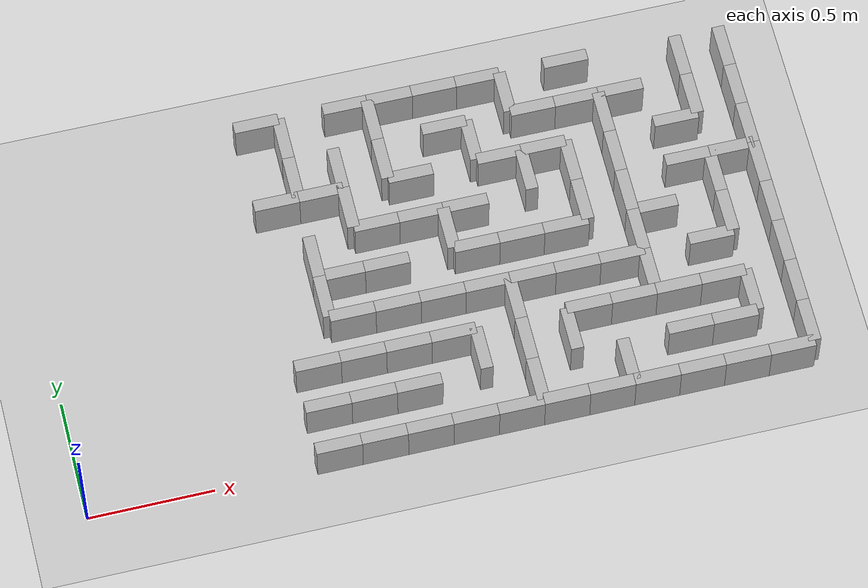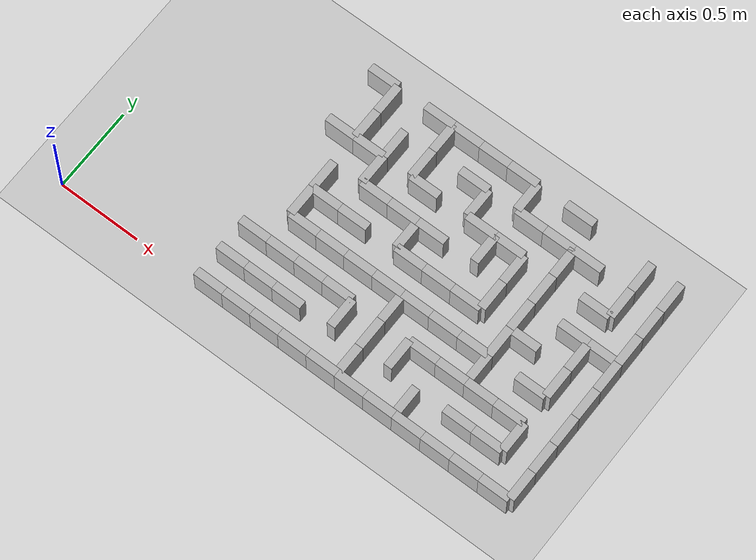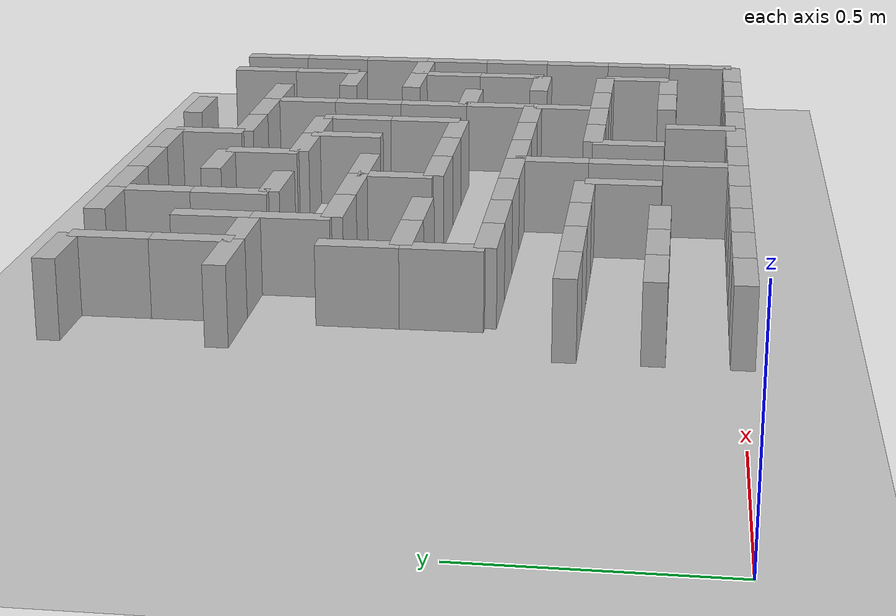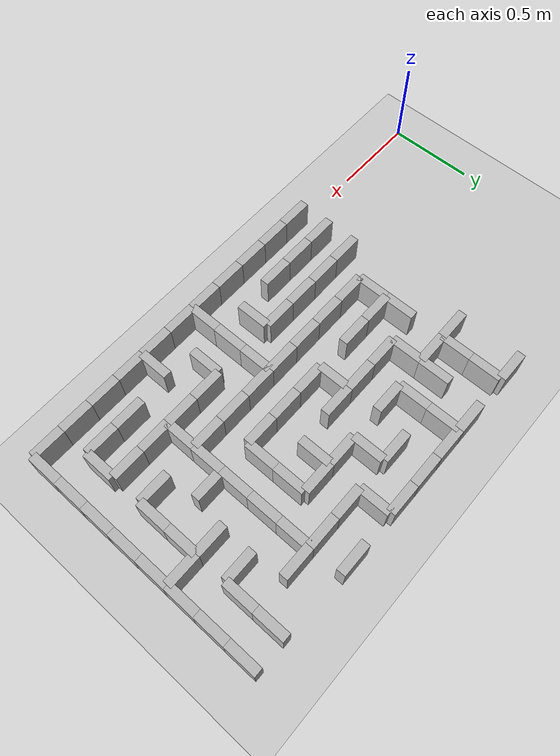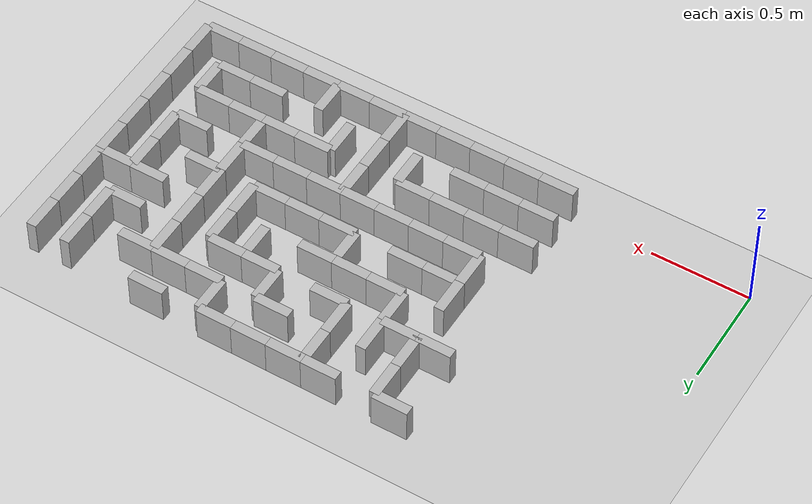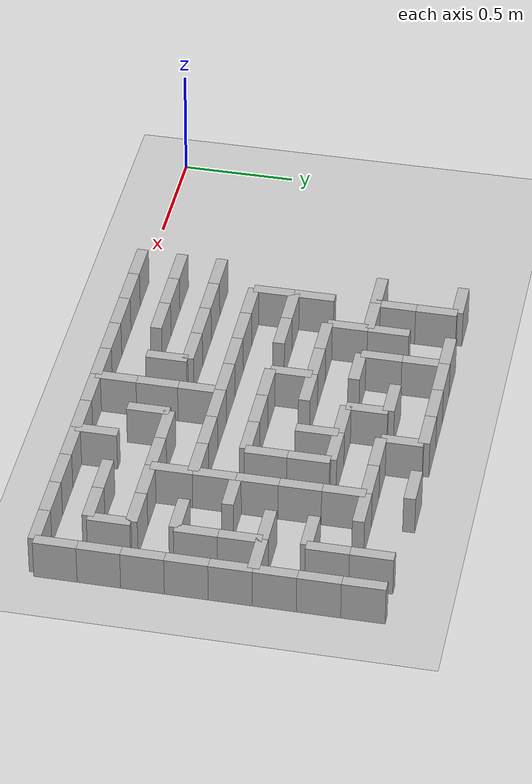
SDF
<sdf version="1.6">
 <world name="default">
  <model name="ground_plane">
   <static>1</static>
   <link name="link">
    <collision name="collision">
     <geometry><plane><normal>0 0 1</normal><size>100 100</size></plane></geometry>
     <surface><friction><ode><mu>100</mu><mu2>50</mu2></ode></friction></surface>
    </collision>
    <visual name="visual">
     <cast_shadows>0</cast_shadows>
     <geometry><plane><normal>0 0 1</normal><size>100 100</size></plane></geometry>
     <material>
      <script><uri>file://media/materials/scripts/gazebo.material</uri><name>Gazebo/Grey</name></script>
     </material>
    </visual>
   </link>
  </model>
  <model name="labyrinth_wall11">
   <pose>0.990000 0.000000 0.09 0 0 0.000000</pose>
   <link name="link">
    <inertial><mass>3.0</mass></inertial>
    <collision name="collision"><geometry><box><size>0.180 0.050 0.180</size></box></geometry></collision>
    <visual name="visual"><geometry><box><size>0.180 0.050 0.180</size></box></geometry></visual>
   </link>
   <static>true</static>
  </model>
  <model name="labyrinth_wall13">
   <pose>1.170000 0.000000 0.09 0 0 0.000000</pose>
   <link name="link">
    <inertial><mass>3.0</mass></inertial>
    <collision name="collision"><geometry><box><size>0.180 0.050 0.180</size></box></geometry></collision>
    <visual name="visual"><geometry><box><size>0.180 0.050 0.180</size></box></geometry></visual>
   </link>
   <static>true</static>
  </model>
  <model name="labyrinth_wall15">
   <pose>1.350000 0.000000 0.09 0 0 0.000000</pose>
   <link name="link">
    <inertial><mass>3.0</mass></inertial>
    <collision name="collision"><geometry><box><size>0.180 0.050 0.180</size></box></geometry></collision>
    <visual name="visual"><geometry><box><size>0.180 0.050 0.180</size></box></geometry></visual>
   </link>
   <static>true</static>
  </model>
  <model name="labyrinth_wall17">
   <pose>1.530000 0.000000 0.09 0 0 0.000000</pose>
   <link name="link">
    <inertial><mass>3.0</mass></inertial>
    <collision name="collision"><geometry><box><size>0.180 0.050 0.180</size></box></geometry></collision>
    <visual name="visual"><geometry><box><size>0.180 0.050 0.180</size></box></geometry></visual>
   </link>
   <static>true</static>
  </model>
  <model name="labyrinth_wall19">
   <pose>1.710000 0.000000 0.09 0 0 0.000000</pose>
   <link name="link">
    <inertial><mass>3.0</mass></inertial>
    <collision name="collision"><geometry><box><size>0.180 0.050 0.180</size></box></geometry></collision>
    <visual name="visual"><geometry><box><size>0.180 0.050 0.180</size></box></geometry></visual>
   </link>
   <static>true</static>
  </model>
  <model name="labyrinth_wall20">
   <pose>1.800000 0.090000 0.09 0 0 1.570796</pose>
   <link name="link">
    <inertial><mass>3.0</mass></inertial>
    <collision name="collision"><geometry><box><size>0.180 0.050 0.180</size></box></geometry></collision>
    <visual name="visual"><geometry><box><size>0.180 0.050 0.180</size></box></geometry></visual>
   </link>
   <static>true</static>
  </model>
  <model name="labyrinth_wall21">
   <pose>1.890000 0.000000 0.09 0 0 0.000000</pose>
   <link name="link">
    <inertial><mass>3.0</mass></inertial>
    <collision name="collision"><geometry><box><size>0.180 0.050 0.180</size></box></geometry></collision>
    <visual name="visual"><geometry><box><size>0.180 0.050 0.180</size></box></geometry></visual>
   </link>
   <static>true</static>
  </model>
  <model name="labyrinth_wall23">
   <pose>2.070000 0.000000 0.09 0 0 0.000000</pose>
   <link name="link">
    <inertial><mass>3.0</mass></inertial>
    <collision name="collision"><geometry><box><size>0.180 0.050 0.180</size></box></geometry></collision>
    <visual name="visual"><geometry><box><size>0.180 0.050 0.180</size></box></geometry></visual>
   </link>
   <static>true</static>
  </model>
  <model name="labyrinth_wall24">
   <pose>2.160000 0.090000 0.09 0 0 1.570796</pose>
   <link name="link">
    <inertial><mass>3.0</mass></inertial>
    <collision name="collision"><geometry><box><size>0.180 0.050 0.180</size></box></geometry></collision>
    <visual name="visual"><geometry><box><size>0.180 0.050 0.180</size></box></geometry></visual>
   </link>
   <static>true</static>
  </model>
  <model name="labyrinth_wall25">
   <pose>2.250000 0.000000 0.09 0 0 0.000000</pose>
   <link name="link">
    <inertial><mass>3.0</mass></inertial>
    <collision name="collision"><geometry><box><size>0.180 0.050 0.180</size></box></geometry></collision>
    <visual name="visual"><geometry><box><size>0.180 0.050 0.180</size></box></geometry></visual>
   </link>
   <static>true</static>
  </model>
  <model name="labyrinth_wall27">
   <pose>2.430000 0.000000 0.09 0 0 0.000000</pose>
   <link name="link">
    <inertial><mass>3.0</mass></inertial>
    <collision name="collision"><geometry><box><size>0.180 0.050 0.180</size></box></geometry></collision>
    <visual name="visual"><geometry><box><size>0.180 0.050 0.180</size></box></geometry></visual>
   </link>
   <static>true</static>
  </model>
  <model name="labyrinth_wall29">
   <pose>2.610000 0.000000 0.09 0 0 0.000000</pose>
   <link name="link">
    <inertial><mass>3.0</mass></inertial>
    <collision name="collision"><geometry><box><size>0.180 0.050 0.180</size></box></geometry></collision>
    <visual name="visual"><geometry><box><size>0.180 0.050 0.180</size></box></geometry></visual>
   </link>
   <static>true</static>
  </model>
  <model name="labyrinth_wall31">
   <pose>2.790000 0.000000 0.09 0 0 0.000000</pose>
   <link name="link">
    <inertial><mass>3.0</mass></inertial>
    <collision name="collision"><geometry><box><size>0.180 0.050 0.180</size></box></geometry></collision>
    <visual name="visual"><geometry><box><size>0.180 0.050 0.180</size></box></geometry></visual>
   </link>
   <static>true</static>
  </model>
  <model name="labyrinth_wall32">
   <pose>2.880000 0.090000 0.09 0 0 1.570796</pose>
   <link name="link">
    <inertial><mass>3.0</mass></inertial>
    <collision name="collision"><geometry><box><size>0.180 0.050 0.180</size></box></geometry></collision>
    <visual name="visual"><geometry><box><size>0.180 0.050 0.180</size></box></geometry></visual>
   </link>
   <static>true</static>
  </model>
  <model name="labyrinth_wall44">
   <pose>0.990000 0.180000 0.09 0 0 0.000000</pose>
   <link name="link">
    <inertial><mass>3.0</mass></inertial>
    <collision name="collision"><geometry><box><size>0.180 0.050 0.180</size></box></geometry></collision>
    <visual name="visual"><geometry><box><size>0.180 0.050 0.180</size></box></geometry></visual>
   </link>
   <static>true</static>
  </model>
  <model name="labyrinth_wall46">
   <pose>1.170000 0.180000 0.09 0 0 0.000000</pose>
   <link name="link">
    <inertial><mass>3.0</mass></inertial>
    <collision name="collision"><geometry><box><size>0.180 0.050 0.180</size></box></geometry></collision>
    <visual name="visual"><geometry><box><size>0.180 0.050 0.180</size></box></geometry></visual>
   </link>
   <static>true</static>
  </model>
  <model name="labyrinth_wall48">
   <pose>1.350000 0.180000 0.09 0 0 0.000000</pose>
   <link name="link">
    <inertial><mass>3.0</mass></inertial>
    <collision name="collision"><geometry><box><size>0.180 0.050 0.180</size></box></geometry></collision>
    <visual name="visual"><geometry><box><size>0.180 0.050 0.180</size></box></geometry></visual>
   </link>
   <static>true</static>
  </model>
  <model name="labyrinth_wall51">
   <pose>1.620000 0.270000 0.09 0 0 1.570796</pose>
   <link name="link">
    <inertial><mass>3.0</mass></inertial>
    <collision name="collision"><geometry><box><size>0.180 0.050 0.180</size></box></geometry></collision>
    <visual name="visual"><geometry><box><size>0.180 0.050 0.180</size></box></geometry></visual>
   </link>
   <static>true</static>
  </model>
  <model name="labyrinth_wall53">
   <pose>1.800000 0.270000 0.09 0 0 1.570796</pose>
   <link name="link">
    <inertial><mass>3.0</mass></inertial>
    <collision name="collision"><geometry><box><size>0.180 0.050 0.180</size></box></geometry></collision>
    <visual name="visual"><geometry><box><size>0.180 0.050 0.180</size></box></geometry></visual>
   </link>
   <static>true</static>
  </model>
  <model name="labyrinth_wall55">
   <pose>1.980000 0.270000 0.09 0 0 1.570796</pose>
   <link name="link">
    <inertial><mass>3.0</mass></inertial>
    <collision name="collision"><geometry><box><size>0.180 0.050 0.180</size></box></geometry></collision>
    <visual name="visual"><geometry><box><size>0.180 0.050 0.180</size></box></geometry></visual>
   </link>
   <static>true</static>
  </model>
  <model name="labyrinth_wall60">
   <pose>2.430000 0.180000 0.09 0 0 0.000000</pose>
   <link name="link">
    <inertial><mass>3.0</mass></inertial>
    <collision name="collision"><geometry><box><size>0.180 0.050 0.180</size></box></geometry></collision>
    <visual name="visual"><geometry><box><size>0.180 0.050 0.180</size></box></geometry></visual>
   </link>
   <static>true</static>
  </model>
  <model name="labyrinth_wall62">
   <pose>2.610000 0.180000 0.09 0 0 0.000000</pose>
   <link name="link">
    <inertial><mass>3.0</mass></inertial>
    <collision name="collision"><geometry><box><size>0.180 0.050 0.180</size></box></geometry></collision>
    <visual name="visual"><geometry><box><size>0.180 0.050 0.180</size></box></geometry></visual>
   </link>
   <static>true</static>
  </model>
  <model name="labyrinth_wall63">
   <pose>2.700000 0.270000 0.09 0 0 1.570796</pose>
   <link name="link">
    <inertial><mass>3.0</mass></inertial>
    <collision name="collision"><geometry><box><size>0.180 0.050 0.180</size></box></geometry></collision>
    <visual name="visual"><geometry><box><size>0.180 0.050 0.180</size></box></geometry></visual>
   </link>
   <static>true</static>
  </model>
  <model name="labyrinth_wall65">
   <pose>2.880000 0.270000 0.09 0 0 1.570796</pose>
   <link name="link">
    <inertial><mass>3.0</mass></inertial>
    <collision name="collision"><geometry><box><size>0.180 0.050 0.180</size></box></geometry></collision>
    <visual name="visual"><geometry><box><size>0.180 0.050 0.180</size></box></geometry></visual>
   </link>
   <static>true</static>
  </model>
  <model name="labyrinth_wall77">
   <pose>0.990000 0.360000 0.09 0 0 0.000000</pose>
   <link name="link">
    <inertial><mass>3.0</mass></inertial>
    <collision name="collision"><geometry><box><size>0.180 0.050 0.180</size></box></geometry></collision>
    <visual name="visual"><geometry><box><size>0.180 0.050 0.180</size></box></geometry></visual>
   </link>
   <static>true</static>
  </model>
  <model name="labyrinth_wall79">
   <pose>1.170000 0.360000 0.09 0 0 0.000000</pose>
   <link name="link">
    <inertial><mass>3.0</mass></inertial>
    <collision name="collision"><geometry><box><size>0.180 0.050 0.180</size></box></geometry></collision>
    <visual name="visual"><geometry><box><size>0.180 0.050 0.180</size></box></geometry></visual>
   </link>
   <static>true</static>
  </model>
  <model name="labyrinth_wall81">
   <pose>1.350000 0.360000 0.09 0 0 0.000000</pose>
   <link name="link">
    <inertial><mass>3.0</mass></inertial>
    <collision name="collision"><geometry><box><size>0.180 0.050 0.180</size></box></geometry></collision>
    <visual name="visual"><geometry><box><size>0.180 0.050 0.180</size></box></geometry></visual>
   </link>
   <static>true</static>
  </model>
  <model name="labyrinth_wall83">
   <pose>1.530000 0.360000 0.09 0 0 0.000000</pose>
   <link name="link">
    <inertial><mass>3.0</mass></inertial>
    <collision name="collision"><geometry><box><size>0.180 0.050 0.180</size></box></geometry></collision>
    <visual name="visual"><geometry><box><size>0.180 0.050 0.180</size></box></geometry></visual>
   </link>
   <static>true</static>
  </model>
  <model name="labyrinth_wall86">
   <pose>1.800000 0.450000 0.09 0 0 1.570796</pose>
   <link name="link">
    <inertial><mass>3.0</mass></inertial>
    <collision name="collision"><geometry><box><size>0.180 0.050 0.180</size></box></geometry></collision>
    <visual name="visual"><geometry><box><size>0.180 0.050 0.180</size></box></geometry></visual>
   </link>
   <static>true</static>
  </model>
  <model name="labyrinth_wall89">
   <pose>2.070000 0.360000 0.09 0 0 0.000000</pose>
   <link name="link">
    <inertial><mass>3.0</mass></inertial>
    <collision name="collision"><geometry><box><size>0.180 0.050 0.180</size></box></geometry></collision>
    <visual name="visual"><geometry><box><size>0.180 0.050 0.180</size></box></geometry></visual>
   </link>
   <static>true</static>
  </model>
  <model name="labyrinth_wall91">
   <pose>2.250000 0.360000 0.09 0 0 0.000000</pose>
   <link name="link">
    <inertial><mass>3.0</mass></inertial>
    <collision name="collision"><geometry><box><size>0.180 0.050 0.180</size></box></geometry></collision>
    <visual name="visual"><geometry><box><size>0.180 0.050 0.180</size></box></geometry></visual>
   </link>
   <static>true</static>
  </model>
  <model name="labyrinth_wall92">
   <pose>2.340000 0.450000 0.09 0 0 1.570796</pose>
   <link name="link">
    <inertial><mass>3.0</mass></inertial>
    <collision name="collision"><geometry><box><size>0.180 0.050 0.180</size></box></geometry></collision>
    <visual name="visual"><geometry><box><size>0.180 0.050 0.180</size></box></geometry></visual>
   </link>
   <static>true</static>
  </model>
  <model name="labyrinth_wall93">
   <pose>2.430000 0.360000 0.09 0 0 0.000000</pose>
   <link name="link">
    <inertial><mass>3.0</mass></inertial>
    <collision name="collision"><geometry><box><size>0.180 0.050 0.180</size></box></geometry></collision>
    <visual name="visual"><geometry><box><size>0.180 0.050 0.180</size></box></geometry></visual>
   </link>
   <static>true</static>
  </model>
  <model name="labyrinth_wall95">
   <pose>2.610000 0.360000 0.09 0 0 0.000000</pose>
   <link name="link">
    <inertial><mass>3.0</mass></inertial>
    <collision name="collision"><geometry><box><size>0.180 0.050 0.180</size></box></geometry></collision>
    <visual name="visual"><geometry><box><size>0.180 0.050 0.180</size></box></geometry></visual>
   </link>
   <static>true</static>
  </model>
  <model name="labyrinth_wall98">
   <pose>2.880000 0.450000 0.09 0 0 1.570796</pose>
   <link name="link">
    <inertial><mass>3.0</mass></inertial>
    <collision name="collision"><geometry><box><size>0.180 0.050 0.180</size></box></geometry></collision>
    <visual name="visual"><geometry><box><size>0.180 0.050 0.180</size></box></geometry></visual>
   </link>
   <static>true</static>
  </model>
  <model name="labyrinth_wall111">
   <pose>1.080000 0.630000 0.09 0 0 1.570796</pose>
   <link name="link">
    <inertial><mass>3.0</mass></inertial>
    <collision name="collision"><geometry><box><size>0.180 0.050 0.180</size></box></geometry></collision>
    <visual name="visual"><geometry><box><size>0.180 0.050 0.180</size></box></geometry></visual>
   </link>
   <static>true</static>
  </model>
  <model name="labyrinth_wall112">
   <pose>1.170000 0.540000 0.09 0 0 0.000000</pose>
   <link name="link">
    <inertial><mass>3.0</mass></inertial>
    <collision name="collision"><geometry><box><size>0.180 0.050 0.180</size></box></geometry></collision>
    <visual name="visual"><geometry><box><size>0.180 0.050 0.180</size></box></geometry></visual>
   </link>
   <static>true</static>
  </model>
  <model name="labyrinth_wall114">
   <pose>1.350000 0.540000 0.09 0 0 0.000000</pose>
   <link name="link">
    <inertial><mass>3.0</mass></inertial>
    <collision name="collision"><geometry><box><size>0.180 0.050 0.180</size></box></geometry></collision>
    <visual name="visual"><geometry><box><size>0.180 0.050 0.180</size></box></geometry></visual>
   </link>
   <static>true</static>
  </model>
  <model name="labyrinth_wall116">
   <pose>1.530000 0.540000 0.09 0 0 0.000000</pose>
   <link name="link">
    <inertial><mass>3.0</mass></inertial>
    <collision name="collision"><geometry><box><size>0.180 0.050 0.180</size></box></geometry></collision>
    <visual name="visual"><geometry><box><size>0.180 0.050 0.180</size></box></geometry></visual>
   </link>
   <static>true</static>
  </model>
  <model name="labyrinth_wall118">
   <pose>1.710000 0.540000 0.09 0 0 0.000000</pose>
   <link name="link">
    <inertial><mass>3.0</mass></inertial>
    <collision name="collision"><geometry><box><size>0.180 0.050 0.180</size></box></geometry></collision>
    <visual name="visual"><geometry><box><size>0.180 0.050 0.180</size></box></geometry></visual>
   </link>
   <static>true</static>
  </model>
  <model name="labyrinth_wall120">
   <pose>1.890000 0.540000 0.09 0 0 0.000000</pose>
   <link name="link">
    <inertial><mass>3.0</mass></inertial>
    <collision name="collision"><geometry><box><size>0.180 0.050 0.180</size></box></geometry></collision>
    <visual name="visual"><geometry><box><size>0.180 0.050 0.180</size></box></geometry></visual>
   </link>
   <static>true</static>
  </model>
  <model name="labyrinth_wall122">
   <pose>2.070000 0.540000 0.09 0 0 0.000000</pose>
   <link name="link">
    <inertial><mass>3.0</mass></inertial>
    <collision name="collision"><geometry><box><size>0.180 0.050 0.180</size></box></geometry></collision>
    <visual name="visual"><geometry><box><size>0.180 0.050 0.180</size></box></geometry></visual>
   </link>
   <static>true</static>
  </model>
  <model name="labyrinth_wall124">
   <pose>2.250000 0.540000 0.09 0 0 0.000000</pose>
   <link name="link">
    <inertial><mass>3.0</mass></inertial>
    <collision name="collision"><geometry><box><size>0.180 0.050 0.180</size></box></geometry></collision>
    <visual name="visual"><geometry><box><size>0.180 0.050 0.180</size></box></geometry></visual>
   </link>
   <static>true</static>
  </model>
  <model name="labyrinth_wall125">
   <pose>2.340000 0.630000 0.09 0 0 1.570796</pose>
   <link name="link">
    <inertial><mass>3.0</mass></inertial>
    <collision name="collision"><geometry><box><size>0.180 0.050 0.180</size></box></geometry></collision>
    <visual name="visual"><geometry><box><size>0.180 0.050 0.180</size></box></geometry></visual>
   </link>
   <static>true</static>
  </model>
  <model name="labyrinth_wall128">
   <pose>2.610000 0.540000 0.09 0 0 0.000000</pose>
   <link name="link">
    <inertial><mass>3.0</mass></inertial>
    <collision name="collision"><geometry><box><size>0.180 0.050 0.180</size></box></geometry></collision>
    <visual name="visual"><geometry><box><size>0.180 0.050 0.180</size></box></geometry></visual>
   </link>
   <static>true</static>
  </model>
  <model name="labyrinth_wall129">
   <pose>2.700000 0.630000 0.09 0 0 1.570796</pose>
   <link name="link">
    <inertial><mass>3.0</mass></inertial>
    <collision name="collision"><geometry><box><size>0.180 0.050 0.180</size></box></geometry></collision>
    <visual name="visual"><geometry><box><size>0.180 0.050 0.180</size></box></geometry></visual>
   </link>
   <static>true</static>
  </model>
  <model name="labyrinth_wall131">
   <pose>2.880000 0.630000 0.09 0 0 1.570796</pose>
   <link name="link">
    <inertial><mass>3.0</mass></inertial>
    <collision name="collision"><geometry><box><size>0.180 0.050 0.180</size></box></geometry></collision>
    <visual name="visual"><geometry><box><size>0.180 0.050 0.180</size></box></geometry></visual>
   </link>
   <static>true</static>
  </model>
  <model name="labyrinth_wall144">
   <pose>1.080000 0.810000 0.09 0 0 1.570796</pose>
   <link name="link">
    <inertial><mass>3.0</mass></inertial>
    <collision name="collision"><geometry><box><size>0.180 0.050 0.180</size></box></geometry></collision>
    <visual name="visual"><geometry><box><size>0.180 0.050 0.180</size></box></geometry></visual>
   </link>
   <static>true</static>
  </model>
  <model name="labyrinth_wall145">
   <pose>1.170000 0.720000 0.09 0 0 0.000000</pose>
   <link name="link">
    <inertial><mass>3.0</mass></inertial>
    <collision name="collision"><geometry><box><size>0.180 0.050 0.180</size></box></geometry></collision>
    <visual name="visual"><geometry><box><size>0.180 0.050 0.180</size></box></geometry></visual>
   </link>
   <static>true</static>
  </model>
  <model name="labyrinth_wall147">
   <pose>1.350000 0.720000 0.09 0 0 0.000000</pose>
   <link name="link">
    <inertial><mass>3.0</mass></inertial>
    <collision name="collision"><geometry><box><size>0.180 0.050 0.180</size></box></geometry></collision>
    <visual name="visual"><geometry><box><size>0.180 0.050 0.180</size></box></geometry></visual>
   </link>
   <static>true</static>
  </model>
  <model name="labyrinth_wall150">
   <pose>1.620000 0.810000 0.09 0 0 1.570796</pose>
   <link name="link">
    <inertial><mass>3.0</mass></inertial>
    <collision name="collision"><geometry><box><size>0.180 0.050 0.180</size></box></geometry></collision>
    <visual name="visual"><geometry><box><size>0.180 0.050 0.180</size></box></geometry></visual>
   </link>
   <static>true</static>
  </model>
  <model name="labyrinth_wall151">
   <pose>1.710000 0.720000 0.09 0 0 0.000000</pose>
   <link name="link">
    <inertial><mass>3.0</mass></inertial>
    <collision name="collision"><geometry><box><size>0.180 0.050 0.180</size></box></geometry></collision>
    <visual name="visual"><geometry><box><size>0.180 0.050 0.180</size></box></geometry></visual>
   </link>
   <static>true</static>
  </model>
  <model name="labyrinth_wall153">
   <pose>1.890000 0.720000 0.09 0 0 0.000000</pose>
   <link name="link">
    <inertial><mass>3.0</mass></inertial>
    <collision name="collision"><geometry><box><size>0.180 0.050 0.180</size></box></geometry></collision>
    <visual name="visual"><geometry><box><size>0.180 0.050 0.180</size></box></geometry></visual>
   </link>
   <static>true</static>
  </model>
  <model name="labyrinth_wall155">
   <pose>2.070000 0.720000 0.09 0 0 0.000000</pose>
   <link name="link">
    <inertial><mass>3.0</mass></inertial>
    <collision name="collision"><geometry><box><size>0.180 0.050 0.180</size></box></geometry></collision>
    <visual name="visual"><geometry><box><size>0.180 0.050 0.180</size></box></geometry></visual>
   </link>
   <static>true</static>
  </model>
  <model name="labyrinth_wall156">
   <pose>2.160000 0.810000 0.09 0 0 1.570796</pose>
   <link name="link">
    <inertial><mass>3.0</mass></inertial>
    <collision name="collision"><geometry><box><size>0.180 0.050 0.180</size></box></geometry></collision>
    <visual name="visual"><geometry><box><size>0.180 0.050 0.180</size></box></geometry></visual>
   </link>
   <static>true</static>
  </model>
  <model name="labyrinth_wall158">
   <pose>2.340000 0.810000 0.09 0 0 1.570796</pose>
   <link name="link">
    <inertial><mass>3.0</mass></inertial>
    <collision name="collision"><geometry><box><size>0.180 0.050 0.180</size></box></geometry></collision>
    <visual name="visual"><geometry><box><size>0.180 0.050 0.180</size></box></geometry></visual>
   </link>
   <static>true</static>
  </model>
  <model name="labyrinth_wall159">
   <pose>2.430000 0.720000 0.09 0 0 0.000000</pose>
   <link name="link">
    <inertial><mass>3.0</mass></inertial>
    <collision name="collision"><geometry><box><size>0.180 0.050 0.180</size></box></geometry></collision>
    <visual name="visual"><geometry><box><size>0.180 0.050 0.180</size></box></geometry></visual>
   </link>
   <static>true</static>
  </model>
  <model name="labyrinth_wall162">
   <pose>2.700000 0.810000 0.09 0 0 1.570796</pose>
   <link name="link">
    <inertial><mass>3.0</mass></inertial>
    <collision name="collision"><geometry><box><size>0.180 0.050 0.180</size></box></geometry></collision>
    <visual name="visual"><geometry><box><size>0.180 0.050 0.180</size></box></geometry></visual>
   </link>
   <static>true</static>
  </model>
  <model name="labyrinth_wall164">
   <pose>2.880000 0.810000 0.09 0 0 1.570796</pose>
   <link name="link">
    <inertial><mass>3.0</mass></inertial>
    <collision name="collision"><geometry><box><size>0.180 0.050 0.180</size></box></geometry></collision>
    <visual name="visual"><geometry><box><size>0.180 0.050 0.180</size></box></geometry></visual>
   </link>
   <static>true</static>
  </model>
  <model name="labyrinth_wall179">
   <pose>1.260000 0.990000 0.09 0 0 1.570796</pose>
   <link name="link">
    <inertial><mass>3.0</mass></inertial>
    <collision name="collision"><geometry><box><size>0.180 0.050 0.180</size></box></geometry></collision>
    <visual name="visual"><geometry><box><size>0.180 0.050 0.180</size></box></geometry></visual>
   </link>
   <static>true</static>
  </model>
  <model name="labyrinth_wall180">
   <pose>1.350000 0.900000 0.09 0 0 0.000000</pose>
   <link name="link">
    <inertial><mass>3.0</mass></inertial>
    <collision name="collision"><geometry><box><size>0.180 0.050 0.180</size></box></geometry></collision>
    <visual name="visual"><geometry><box><size>0.180 0.050 0.180</size></box></geometry></visual>
   </link>
   <static>true</static>
  </model>
  <model name="labyrinth_wall182">
   <pose>1.530000 0.900000 0.09 0 0 0.000000</pose>
   <link name="link">
    <inertial><mass>3.0</mass></inertial>
    <collision name="collision"><geometry><box><size>0.180 0.050 0.180</size></box></geometry></collision>
    <visual name="visual"><geometry><box><size>0.180 0.050 0.180</size></box></geometry></visual>
   </link>
   <static>true</static>
  </model>
  <model name="labyrinth_wall184">
   <pose>1.710000 0.900000 0.09 0 0 0.000000</pose>
   <link name="link">
    <inertial><mass>3.0</mass></inertial>
    <collision name="collision"><geometry><box><size>0.180 0.050 0.180</size></box></geometry></collision>
    <visual name="visual"><geometry><box><size>0.180 0.050 0.180</size></box></geometry></visual>
   </link>
   <static>true</static>
  </model>
  <model name="labyrinth_wall187">
   <pose>1.980000 0.990000 0.09 0 0 1.570796</pose>
   <link name="link">
    <inertial><mass>3.0</mass></inertial>
    <collision name="collision"><geometry><box><size>0.180 0.050 0.180</size></box></geometry></collision>
    <visual name="visual"><geometry><box><size>0.180 0.050 0.180</size></box></geometry></visual>
   </link>
   <static>true</static>
  </model>
  <model name="labyrinth_wall189">
   <pose>2.160000 0.990000 0.09 0 0 1.570796</pose>
   <link name="link">
    <inertial><mass>3.0</mass></inertial>
    <collision name="collision"><geometry><box><size>0.180 0.050 0.180</size></box></geometry></collision>
    <visual name="visual"><geometry><box><size>0.180 0.050 0.180</size></box></geometry></visual>
   </link>
   <static>true</static>
  </model>
  <model name="labyrinth_wall191">
   <pose>2.340000 0.990000 0.09 0 0 1.570796</pose>
   <link name="link">
    <inertial><mass>3.0</mass></inertial>
    <collision name="collision"><geometry><box><size>0.180 0.050 0.180</size></box></geometry></collision>
    <visual name="visual"><geometry><box><size>0.180 0.050 0.180</size></box></geometry></visual>
   </link>
   <static>true</static>
  </model>
  <model name="labyrinth_wall194">
   <pose>2.610000 0.900000 0.09 0 0 0.000000</pose>
   <link name="link">
    <inertial><mass>3.0</mass></inertial>
    <collision name="collision"><geometry><box><size>0.180 0.050 0.180</size></box></geometry></collision>
    <visual name="visual"><geometry><box><size>0.180 0.050 0.180</size></box></geometry></visual>
   </link>
   <static>true</static>
  </model>
  <model name="labyrinth_wall196">
   <pose>2.790000 0.900000 0.09 0 0 0.000000</pose>
   <link name="link">
    <inertial><mass>3.0</mass></inertial>
    <collision name="collision"><geometry><box><size>0.180 0.050 0.180</size></box></geometry></collision>
    <visual name="visual"><geometry><box><size>0.180 0.050 0.180</size></box></geometry></visual>
   </link>
   <static>true</static>
  </model>
  <model name="labyrinth_wall197">
   <pose>2.880000 0.990000 0.09 0 0 1.570796</pose>
   <link name="link">
    <inertial><mass>3.0</mass></inertial>
    <collision name="collision"><geometry><box><size>0.180 0.050 0.180</size></box></geometry></collision>
    <visual name="visual"><geometry><box><size>0.180 0.050 0.180</size></box></geometry></visual>
   </link>
   <static>true</static>
  </model>
  <model name="labyrinth_wall209">
   <pose>0.990000 1.080000 0.09 0 0 0.000000</pose>
   <link name="link">
    <inertial><mass>3.0</mass></inertial>
    <collision name="collision"><geometry><box><size>0.180 0.050 0.180</size></box></geometry></collision>
    <visual name="visual"><geometry><box><size>0.180 0.050 0.180</size></box></geometry></visual>
   </link>
   <static>true</static>
  </model>
  <model name="labyrinth_wall210">
   <pose>1.080000 1.170000 0.09 0 0 1.570796</pose>
   <link name="link">
    <inertial><mass>3.0</mass></inertial>
    <collision name="collision"><geometry><box><size>0.180 0.050 0.180</size></box></geometry></collision>
    <visual name="visual"><geometry><box><size>0.180 0.050 0.180</size></box></geometry></visual>
   </link>
   <static>true</static>
  </model>
  <model name="labyrinth_wall211">
   <pose>1.170000 1.080000 0.09 0 0 0.000000</pose>
   <link name="link">
    <inertial><mass>3.0</mass></inertial>
    <collision name="collision"><geometry><box><size>0.180 0.050 0.180</size></box></geometry></collision>
    <visual name="visual"><geometry><box><size>0.180 0.050 0.180</size></box></geometry></visual>
   </link>
   <static>true</static>
  </model>
  <model name="labyrinth_wall212">
   <pose>1.260000 1.170000 0.09 0 0 1.570796</pose>
   <link name="link">
    <inertial><mass>3.0</mass></inertial>
    <collision name="collision"><geometry><box><size>0.180 0.050 0.180</size></box></geometry></collision>
    <visual name="visual"><geometry><box><size>0.180 0.050 0.180</size></box></geometry></visual>
   </link>
   <static>true</static>
  </model>
  <model name="labyrinth_wall214">
   <pose>1.440000 1.170000 0.09 0 0 1.570796</pose>
   <link name="link">
    <inertial><mass>3.0</mass></inertial>
    <collision name="collision"><geometry><box><size>0.180 0.050 0.180</size></box></geometry></collision>
    <visual name="visual"><geometry><box><size>0.180 0.050 0.180</size></box></geometry></visual>
   </link>
   <static>true</static>
  </model>
  <model name="labyrinth_wall215">
   <pose>1.530000 1.080000 0.09 0 0 0.000000</pose>
   <link name="link">
    <inertial><mass>3.0</mass></inertial>
    <collision name="collision"><geometry><box><size>0.180 0.050 0.180</size></box></geometry></collision>
    <visual name="visual"><geometry><box><size>0.180 0.050 0.180</size></box></geometry></visual>
   </link>
   <static>true</static>
  </model>
  <model name="labyrinth_wall218">
   <pose>1.800000 1.170000 0.09 0 0 1.570796</pose>
   <link name="link">
    <inertial><mass>3.0</mass></inertial>
    <collision name="collision"><geometry><box><size>0.180 0.050 0.180</size></box></geometry></collision>
    <visual name="visual"><geometry><box><size>0.180 0.050 0.180</size></box></geometry></visual>
   </link>
   <static>true</static>
  </model>
  <model name="labyrinth_wall219">
   <pose>1.890000 1.080000 0.09 0 0 0.000000</pose>
   <link name="link">
    <inertial><mass>3.0</mass></inertial>
    <collision name="collision"><geometry><box><size>0.180 0.050 0.180</size></box></geometry></collision>
    <visual name="visual"><geometry><box><size>0.180 0.050 0.180</size></box></geometry></visual>
   </link>
   <static>true</static>
  </model>
  <model name="labyrinth_wall221">
   <pose>2.070000 1.080000 0.09 0 0 0.000000</pose>
   <link name="link">
    <inertial><mass>3.0</mass></inertial>
    <collision name="collision"><geometry><box><size>0.180 0.050 0.180</size></box></geometry></collision>
    <visual name="visual"><geometry><box><size>0.180 0.050 0.180</size></box></geometry></visual>
   </link>
   <static>true</static>
  </model>
  <model name="labyrinth_wall224">
   <pose>2.340000 1.170000 0.09 0 0 1.570796</pose>
   <link name="link">
    <inertial><mass>3.0</mass></inertial>
    <collision name="collision"><geometry><box><size>0.180 0.050 0.180</size></box></geometry></collision>
    <visual name="visual"><geometry><box><size>0.180 0.050 0.180</size></box></geometry></visual>
   </link>
   <static>true</static>
  </model>
  <model name="labyrinth_wall227">
   <pose>2.610000 1.080000 0.09 0 0 0.000000</pose>
   <link name="link">
    <inertial><mass>3.0</mass></inertial>
    <collision name="collision"><geometry><box><size>0.180 0.050 0.180</size></box></geometry></collision>
    <visual name="visual"><geometry><box><size>0.180 0.050 0.180</size></box></geometry></visual>
   </link>
   <static>true</static>
  </model>
  <model name="labyrinth_wall228">
   <pose>2.700000 1.170000 0.09 0 0 1.570796</pose>
   <link name="link">
    <inertial><mass>3.0</mass></inertial>
    <collision name="collision"><geometry><box><size>0.180 0.050 0.180</size></box></geometry></collision>
    <visual name="visual"><geometry><box><size>0.180 0.050 0.180</size></box></geometry></visual>
   </link>
   <static>true</static>
  </model>
  <model name="labyrinth_wall230">
   <pose>2.880000 1.170000 0.09 0 0 1.570796</pose>
   <link name="link">
    <inertial><mass>3.0</mass></inertial>
    <collision name="collision"><geometry><box><size>0.180 0.050 0.180</size></box></geometry></collision>
    <visual name="visual"><geometry><box><size>0.180 0.050 0.180</size></box></geometry></visual>
   </link>
   <static>true</static>
  </model>
  <model name="labyrinth_wall243">
   <pose>1.080000 1.350000 0.09 0 0 1.570796</pose>
   <link name="link">
    <inertial><mass>3.0</mass></inertial>
    <collision name="collision"><geometry><box><size>0.180 0.050 0.180</size></box></geometry></collision>
    <visual name="visual"><geometry><box><size>0.180 0.050 0.180</size></box></geometry></visual>
   </link>
   <static>true</static>
  </model>
  <model name="labyrinth_wall247">
   <pose>1.440000 1.350000 0.09 0 0 1.570796</pose>
   <link name="link">
    <inertial><mass>3.0</mass></inertial>
    <collision name="collision"><geometry><box><size>0.180 0.050 0.180</size></box></geometry></collision>
    <visual name="visual"><geometry><box><size>0.180 0.050 0.180</size></box></geometry></visual>
   </link>
   <static>true</static>
  </model>
  <model name="labyrinth_wall250">
   <pose>1.710000 1.260000 0.09 0 0 0.000000</pose>
   <link name="link">
    <inertial><mass>3.0</mass></inertial>
    <collision name="collision"><geometry><box><size>0.180 0.050 0.180</size></box></geometry></collision>
    <visual name="visual"><geometry><box><size>0.180 0.050 0.180</size></box></geometry></visual>
   </link>
   <static>true</static>
  </model>
  <model name="labyrinth_wall253">
   <pose>1.980000 1.350000 0.09 0 0 1.570796</pose>
   <link name="link">
    <inertial><mass>3.0</mass></inertial>
    <collision name="collision"><geometry><box><size>0.180 0.050 0.180</size></box></geometry></collision>
    <visual name="visual"><geometry><box><size>0.180 0.050 0.180</size></box></geometry></visual>
   </link>
   <static>true</static>
  </model>
  <model name="labyrinth_wall254">
   <pose>2.070000 1.260000 0.09 0 0 0.000000</pose>
   <link name="link">
    <inertial><mass>3.0</mass></inertial>
    <collision name="collision"><geometry><box><size>0.180 0.050 0.180</size></box></geometry></collision>
    <visual name="visual"><geometry><box><size>0.180 0.050 0.180</size></box></geometry></visual>
   </link>
   <static>true</static>
  </model>
  <model name="labyrinth_wall256">
   <pose>2.250000 1.260000 0.09 0 0 0.000000</pose>
   <link name="link">
    <inertial><mass>3.0</mass></inertial>
    <collision name="collision"><geometry><box><size>0.180 0.050 0.180</size></box></geometry></collision>
    <visual name="visual"><geometry><box><size>0.180 0.050 0.180</size></box></geometry></visual>
   </link>
   <static>true</static>
  </model>
  <model name="labyrinth_wall258">
   <pose>2.430000 1.260000 0.09 0 0 0.000000</pose>
   <link name="link">
    <inertial><mass>3.0</mass></inertial>
    <collision name="collision"><geometry><box><size>0.180 0.050 0.180</size></box></geometry></collision>
    <visual name="visual"><geometry><box><size>0.180 0.050 0.180</size></box></geometry></visual>
   </link>
   <static>true</static>
  </model>
  <model name="labyrinth_wall261">
   <pose>2.700000 1.350000 0.09 0 0 1.570796</pose>
   <link name="link">
    <inertial><mass>3.0</mass></inertial>
    <collision name="collision"><geometry><box><size>0.180 0.050 0.180</size></box></geometry></collision>
    <visual name="visual"><geometry><box><size>0.180 0.050 0.180</size></box></geometry></visual>
   </link>
   <static>true</static>
  </model>
  <model name="labyrinth_wall263">
   <pose>2.880000 1.350000 0.09 0 0 1.570796</pose>
   <link name="link">
    <inertial><mass>3.0</mass></inertial>
    <collision name="collision"><geometry><box><size>0.180 0.050 0.180</size></box></geometry></collision>
    <visual name="visual"><geometry><box><size>0.180 0.050 0.180</size></box></geometry></visual>
   </link>
   <static>true</static>
  </model>
  <model name="labyrinth_wall275">
   <pose>0.990000 1.440000 0.09 0 0 0.000000</pose>
   <link name="link">
    <inertial><mass>3.0</mass></inertial>
    <collision name="collision"><geometry><box><size>0.180 0.050 0.180</size></box></geometry></collision>
    <visual name="visual"><geometry><box><size>0.180 0.050 0.180</size></box></geometry></visual>
   </link>
   <static>true</static>
  </model>
  <model name="labyrinth_wall279">
   <pose>1.350000 1.440000 0.09 0 0 0.000000</pose>
   <link name="link">
    <inertial><mass>3.0</mass></inertial>
    <collision name="collision"><geometry><box><size>0.180 0.050 0.180</size></box></geometry></collision>
    <visual name="visual"><geometry><box><size>0.180 0.050 0.180</size></box></geometry></visual>
   </link>
   <static>true</static>
  </model>
  <model name="labyrinth_wall281">
   <pose>1.530000 1.440000 0.09 0 0 0.000000</pose>
   <link name="link">
    <inertial><mass>3.0</mass></inertial>
    <collision name="collision"><geometry><box><size>0.180 0.050 0.180</size></box></geometry></collision>
    <visual name="visual"><geometry><box><size>0.180 0.050 0.180</size></box></geometry></visual>
   </link>
   <static>true</static>
  </model>
  <model name="labyrinth_wall283">
   <pose>1.710000 1.440000 0.09 0 0 0.000000</pose>
   <link name="link">
    <inertial><mass>3.0</mass></inertial>
    <collision name="collision"><geometry><box><size>0.180 0.050 0.180</size></box></geometry></collision>
    <visual name="visual"><geometry><box><size>0.180 0.050 0.180</size></box></geometry></visual>
   </link>
   <static>true</static>
  </model>
  <model name="labyrinth_wall285">
   <pose>1.890000 1.440000 0.09 0 0 0.000000</pose>
   <link name="link">
    <inertial><mass>3.0</mass></inertial>
    <collision name="collision"><geometry><box><size>0.180 0.050 0.180</size></box></geometry></collision>
    <visual name="visual"><geometry><box><size>0.180 0.050 0.180</size></box></geometry></visual>
   </link>
   <static>true</static>
  </model>
  <model name="labyrinth_wall289">
   <pose>2.250000 1.440000 0.09 0 0 0.000000</pose>
   <link name="link">
    <inertial><mass>3.0</mass></inertial>
    <collision name="collision"><geometry><box><size>0.180 0.050 0.180</size></box></geometry></collision>
    <visual name="visual"><geometry><box><size>0.180 0.050 0.180</size></box></geometry></visual>
   </link>
   <static>true</static>
  </model>
 </world>
</sdf>
